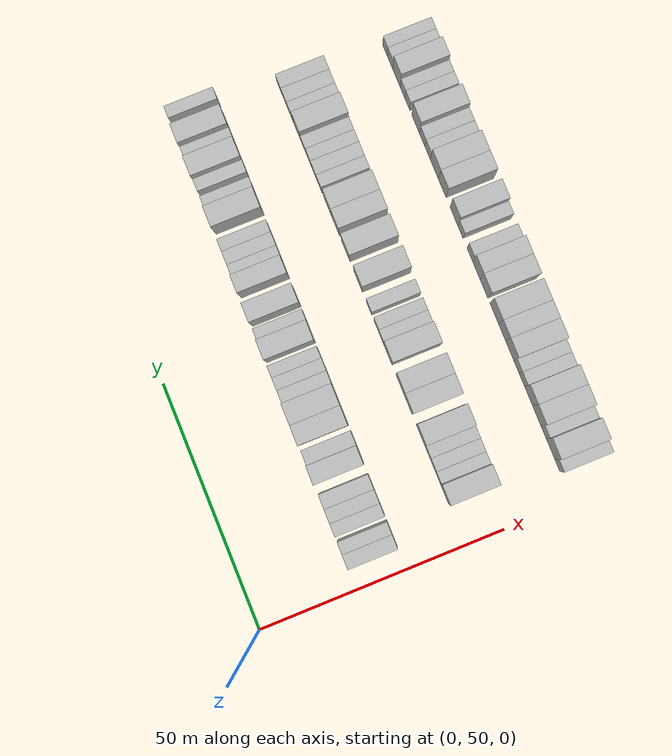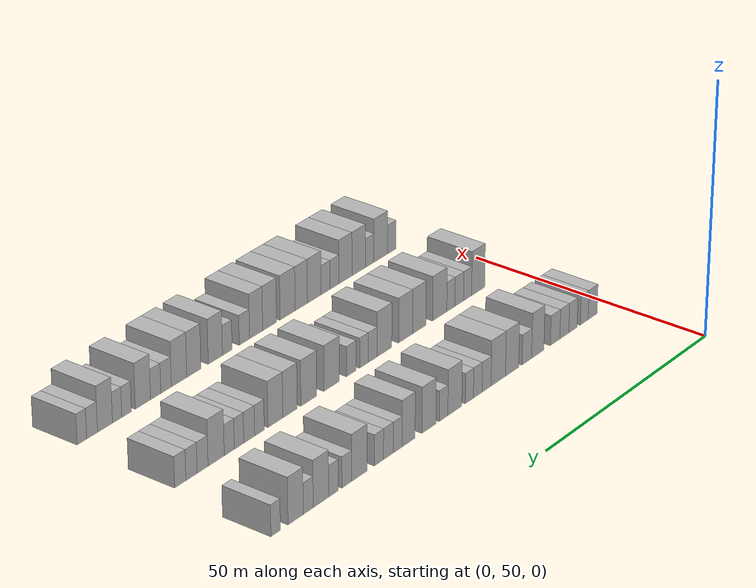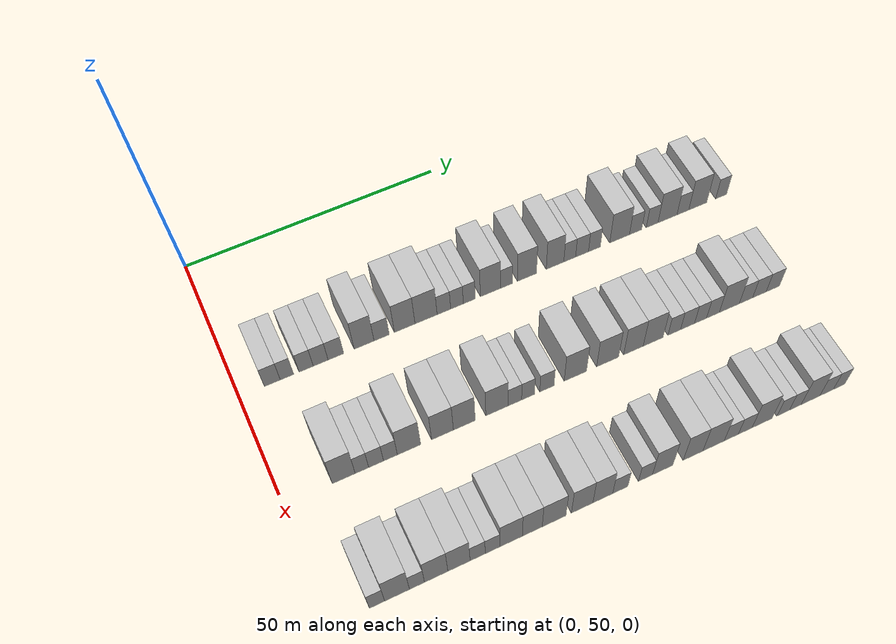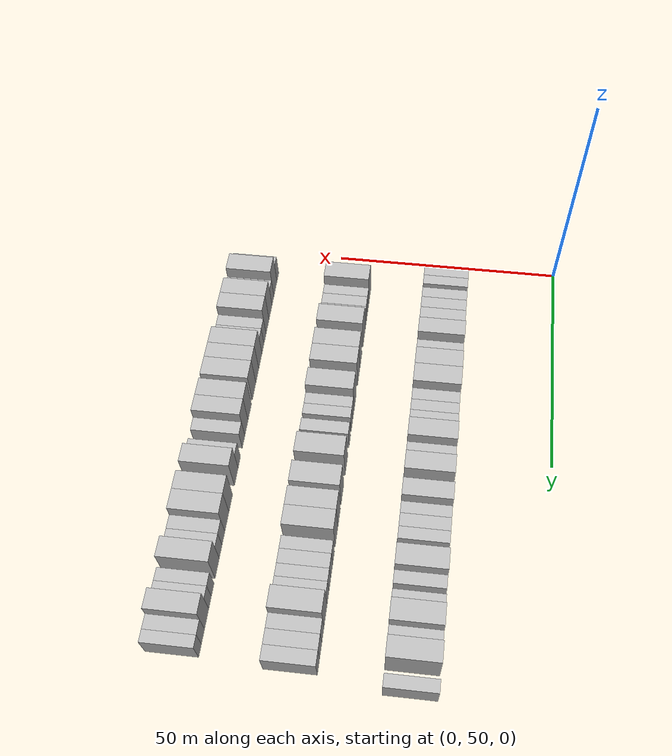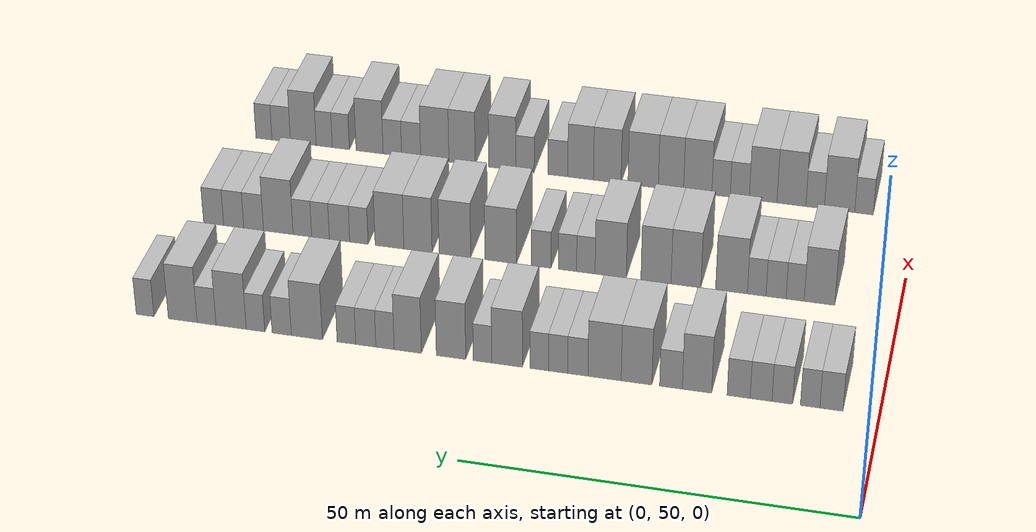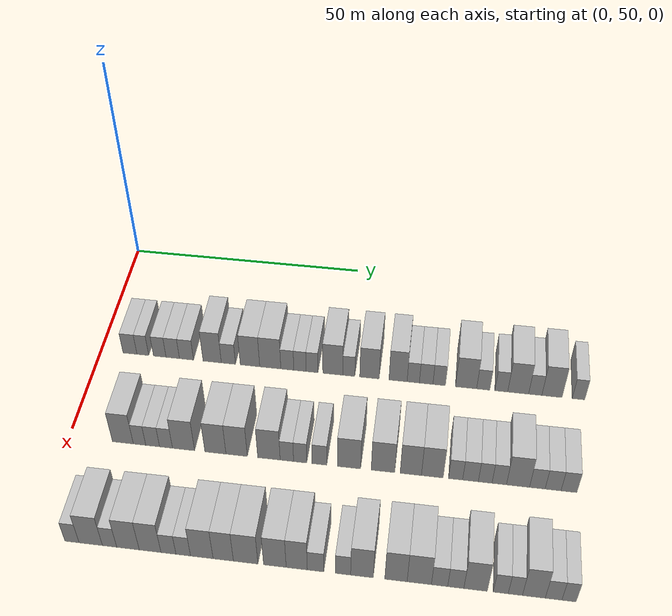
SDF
<sdf version="1.6">
 <world name="default">
  <model name="building_73">
   <static>1</static>
   <pose>25.0000 56.1360 0 0.000000 0.000000 0.000000</pose>
   <link name="link">
    <pose>0 0 3.00 0 0 0</pose>
    <collision name="collision"><geometry><box><size>10.0000 2.9486 6.0000</size></box></geometry></collision>
    <visual name="visual">
     <cast_shadows>0</cast_shadows>
     <geometry><box><size>10.0000 2.9486 6.0000</size></box></geometry>
     <material>
      <script>
       <uri>model://HANNAS_wall/materials/scripts</uri>
       <uri>model://HANNAS_wall/materials/textures</uri>
       <name>vrc/HANNAS_wall</name>
      </script>
     </material>
    </visual>
   </link>
  </model>
  <model name="building_74">
   <static>1</static>
   <pose>25.0000 58.8562 0 0.000000 0.000000 0.000000</pose>
   <link name="link">
    <pose>0 0 3.00 0 0 0</pose>
    <collision name="collision"><geometry><box><size>10.0000 2.4918 6.0000</size></box></geometry></collision>
    <visual name="visual">
     <cast_shadows>0</cast_shadows>
     <geometry><box><size>10.0000 2.4918 6.0000</size></box></geometry>
     <material>
      <script>
       <uri>model://HANNAS_wall/materials/scripts</uri>
       <uri>model://HANNAS_wall/materials/textures</uri>
       <name>vrc/HANNAS_wall</name>
      </script>
     </material>
    </visual>
   </link>
  </model>
  <model name="building_75">
   <static>1</static>
   <pose>25.0000 62.4232 0 0.000000 0.000000 0.000000</pose>
   <link name="link">
    <pose>0 0 3.00 0 0 0</pose>
    <collision name="collision"><geometry><box><size>10.0000 2.6422 6.0000</size></box></geometry></collision>
    <visual name="visual">
     <cast_shadows>0</cast_shadows>
     <geometry><box><size>10.0000 2.6422 6.0000</size></box></geometry>
     <material>
      <script>
       <uri>model://HANNAS_wall/materials/scripts</uri>
       <uri>model://HANNAS_wall/materials/textures</uri>
       <name>vrc/HANNAS_wall</name>
      </script>
     </material>
    </visual>
   </link>
  </model>
  <model name="building_76">
   <static>1</static>
   <pose>25.0000 65.1523 0 0.000000 0.000000 0.000000</pose>
   <link name="link">
    <pose>0 0 3.00 0 0 0</pose>
    <collision name="collision"><geometry><box><size>10.0000 2.8160 6.0000</size></box></geometry></collision>
    <visual name="visual">
     <cast_shadows>0</cast_shadows>
     <geometry><box><size>10.0000 2.8160 6.0000</size></box></geometry>
     <material>
      <script>
       <uri>model://HANNAS_wall/materials/scripts</uri>
       <uri>model://HANNAS_wall/materials/textures</uri>
       <name>vrc/HANNAS_wall</name>
      </script>
     </material>
    </visual>
   </link>
  </model>
  <model name="building_77">
   <static>1</static>
   <pose>25.0000 68.0411 0 0.000000 0.000000 0.000000</pose>
   <link name="link">
    <pose>0 0 3.00 0 0 0</pose>
    <collision name="collision"><geometry><box><size>10.0000 2.9617 6.0000</size></box></geometry></collision>
    <visual name="visual">
     <cast_shadows>0</cast_shadows>
     <geometry><box><size>10.0000 2.9617 6.0000</size></box></geometry>
     <material>
      <script>
       <uri>model://HANNAS_wall/materials/scripts</uri>
       <uri>model://HANNAS_wall/materials/textures</uri>
       <name>vrc/HANNAS_wall</name>
      </script>
     </material>
    </visual>
   </link>
  </model>
  <model name="building_78">
   <static>1</static>
   <pose>25.0000 73.4273 0 0.000000 0.000000 0.000000</pose>
   <link name="link">
    <pose>0 0 4.50 0 0 0</pose>
    <collision name="collision"><geometry><box><size>10.0000 3.8107 9.0000</size></box></geometry></collision>
    <visual name="visual">
     <cast_shadows>0</cast_shadows>
     <geometry><box><size>10.0000 3.8107 9.0000</size></box></geometry>
     <material>
      <script>
       <uri>model://HANNAS_wall/materials/scripts</uri>
       <uri>model://HANNAS_wall/materials/textures</uri>
       <name>vrc/HANNAS_wall</name>
      </script>
     </material>
    </visual>
   </link>
  </model>
  <model name="building_79">
   <static>1</static>
   <pose>25.0000 76.8065 0 0.000000 0.000000 0.000000</pose>
   <link name="link">
    <pose>0 0 3.00 0 0 0</pose>
    <collision name="collision"><geometry><box><size>10.0000 2.9477 6.0000</size></box></geometry></collision>
    <visual name="visual">
     <cast_shadows>0</cast_shadows>
     <geometry><box><size>10.0000 2.9477 6.0000</size></box></geometry>
     <material>
      <script>
       <uri>model://HANNAS_wall/materials/scripts</uri>
       <uri>model://HANNAS_wall/materials/textures</uri>
       <name>vrc/HANNAS_wall</name>
      </script>
     </material>
    </visual>
   </link>
  </model>
  <model name="building_80">
   <static>1</static>
   <pose>25.0000 81.2902 0 0.000000 0.000000 0.000000</pose>
   <link name="link">
    <pose>0 0 4.50 0 0 0</pose>
    <collision name="collision"><geometry><box><size>10.0000 4.0198 9.0000</size></box></geometry></collision>
    <visual name="visual">
     <cast_shadows>0</cast_shadows>
     <geometry><box><size>10.0000 4.0198 9.0000</size></box></geometry>
     <material>
      <script>
       <uri>model://HANNAS_wall/materials/scripts</uri>
       <uri>model://HANNAS_wall/materials/textures</uri>
       <name>vrc/HANNAS_wall</name>
      </script>
     </material>
    </visual>
   </link>
  </model>
  <model name="building_81">
   <static>1</static>
   <pose>25.0000 85.4808 0 0.000000 0.000000 0.000000</pose>
   <link name="link">
    <pose>0 0 4.50 0 0 0</pose>
    <collision name="collision"><geometry><box><size>10.0000 4.3614 9.0000</size></box></geometry></collision>
    <visual name="visual">
     <cast_shadows>0</cast_shadows>
     <geometry><box><size>10.0000 4.3614 9.0000</size></box></geometry>
     <material>
      <script>
       <uri>model://HANNAS_wall/materials/scripts</uri>
       <uri>model://HANNAS_wall/materials/textures</uri>
       <name>vrc/HANNAS_wall</name>
      </script>
     </material>
    </visual>
   </link>
  </model>
  <model name="building_82">
   <static>1</static>
   <pose>25.0000 89.0031 0 0.000000 0.000000 0.000000</pose>
   <link name="link">
    <pose>0 0 3.00 0 0 0</pose>
    <collision name="collision"><geometry><box><size>10.0000 2.6832 6.0000</size></box></geometry></collision>
    <visual name="visual">
     <cast_shadows>0</cast_shadows>
     <geometry><box><size>10.0000 2.6832 6.0000</size></box></geometry>
     <material>
      <script>
       <uri>model://HANNAS_wall/materials/scripts</uri>
       <uri>model://HANNAS_wall/materials/textures</uri>
       <name>vrc/HANNAS_wall</name>
      </script>
     </material>
    </visual>
   </link>
  </model>
  <model name="building_83">
   <static>1</static>
   <pose>25.0000 91.6121 0 0.000000 0.000000 0.000000</pose>
   <link name="link">
    <pose>0 0 3.00 0 0 0</pose>
    <collision name="collision"><geometry><box><size>10.0000 2.5348 6.0000</size></box></geometry></collision>
    <visual name="visual">
     <cast_shadows>0</cast_shadows>
     <geometry><box><size>10.0000 2.5348 6.0000</size></box></geometry>
     <material>
      <script>
       <uri>model://HANNAS_wall/materials/scripts</uri>
       <uri>model://HANNAS_wall/materials/textures</uri>
       <name>vrc/HANNAS_wall</name>
      </script>
     </material>
    </visual>
   </link>
  </model>
  <model name="building_84">
   <static>1</static>
   <pose>25.0000 94.0917 0 0.000000 0.000000 0.000000</pose>
   <link name="link">
    <pose>0 0 3.00 0 0 0</pose>
    <collision name="collision"><geometry><box><size>10.0000 2.4243 6.0000</size></box></geometry></collision>
    <visual name="visual">
     <cast_shadows>0</cast_shadows>
     <geometry><box><size>10.0000 2.4243 6.0000</size></box></geometry>
     <material>
      <script>
       <uri>model://HANNAS_wall/materials/scripts</uri>
       <uri>model://HANNAS_wall/materials/textures</uri>
       <name>vrc/HANNAS_wall</name>
      </script>
     </material>
    </visual>
   </link>
  </model>
  <model name="building_85">
   <static>1</static>
   <pose>25.0000 98.3396 0 0.000000 0.000000 0.000000</pose>
   <link name="link">
    <pose>0 0 4.50 0 0 0</pose>
    <collision name="collision"><geometry><box><size>10.0000 4.0715 9.0000</size></box></geometry></collision>
    <visual name="visual">
     <cast_shadows>0</cast_shadows>
     <geometry><box><size>10.0000 4.0715 9.0000</size></box></geometry>
     <material>
      <script>
       <uri>model://HANNAS_wall/materials/scripts</uri>
       <uri>model://HANNAS_wall/materials/textures</uri>
       <name>vrc/HANNAS_wall</name>
      </script>
     </material>
    </visual>
   </link>
  </model>
  <model name="building_86">
   <static>1</static>
   <pose>25.0000 101.6070 0 0.000000 0.000000 0.000000</pose>
   <link name="link">
    <pose>0 0 3.00 0 0 0</pose>
    <collision name="collision"><geometry><box><size>10.0000 2.4632 6.0000</size></box></geometry></collision>
    <visual name="visual">
     <cast_shadows>0</cast_shadows>
     <geometry><box><size>10.0000 2.4632 6.0000</size></box></geometry>
     <material>
      <script>
       <uri>model://HANNAS_wall/materials/scripts</uri>
       <uri>model://HANNAS_wall/materials/textures</uri>
       <name>vrc/HANNAS_wall</name>
      </script>
     </material>
    </visual>
   </link>
  </model>
  <model name="building_87">
   <static>1</static>
   <pose>25.0000 105.8051 0 0.000000 0.000000 0.000000</pose>
   <link name="link">
    <pose>0 0 4.50 0 0 0</pose>
    <collision name="collision"><geometry><box><size>10.0000 3.9330 9.0000</size></box></geometry></collision>
    <visual name="visual">
     <cast_shadows>0</cast_shadows>
     <geometry><box><size>10.0000 3.9330 9.0000</size></box></geometry>
     <material>
      <script>
       <uri>model://HANNAS_wall/materials/scripts</uri>
       <uri>model://HANNAS_wall/materials/textures</uri>
       <name>vrc/HANNAS_wall</name>
      </script>
     </material>
    </visual>
   </link>
  </model>
  <model name="building_88">
   <static>1</static>
   <pose>25.0000 111.6050 0 0.000000 0.000000 0.000000</pose>
   <link name="link">
    <pose>0 0 4.50 0 0 0</pose>
    <collision name="collision"><geometry><box><size>10.0000 3.6668 9.0000</size></box></geometry></collision>
    <visual name="visual">
     <cast_shadows>0</cast_shadows>
     <geometry><box><size>10.0000 3.6668 9.0000</size></box></geometry>
     <material>
      <script>
       <uri>model://HANNAS_wall/materials/scripts</uri>
       <uri>model://HANNAS_wall/materials/textures</uri>
       <name>vrc/HANNAS_wall</name>
      </script>
     </material>
    </visual>
   </link>
  </model>
  <model name="building_89">
   <static>1</static>
   <pose>25.0000 114.6731 0 0.000000 0.000000 0.000000</pose>
   <link name="link">
    <pose>0 0 3.00 0 0 0</pose>
    <collision name="collision"><geometry><box><size>10.0000 2.4694 6.0000</size></box></geometry></collision>
    <visual name="visual">
     <cast_shadows>0</cast_shadows>
     <geometry><box><size>10.0000 2.4694 6.0000</size></box></geometry>
     <material>
      <script>
       <uri>model://HANNAS_wall/materials/scripts</uri>
       <uri>model://HANNAS_wall/materials/textures</uri>
       <name>vrc/HANNAS_wall</name>
      </script>
     </material>
    </visual>
   </link>
  </model>
  <model name="building_90">
   <static>1</static>
   <pose>25.0000 117.2716 0 0.000000 0.000000 0.000000</pose>
   <link name="link">
    <pose>0 0 3.00 0 0 0</pose>
    <collision name="collision"><geometry><box><size>10.0000 2.7276 6.0000</size></box></geometry></collision>
    <visual name="visual">
     <cast_shadows>0</cast_shadows>
     <geometry><box><size>10.0000 2.7276 6.0000</size></box></geometry>
     <material>
      <script>
       <uri>model://HANNAS_wall/materials/scripts</uri>
       <uri>model://HANNAS_wall/materials/textures</uri>
       <name>vrc/HANNAS_wall</name>
      </script>
     </material>
    </visual>
   </link>
  </model>
  <model name="building_91">
   <static>1</static>
   <pose>25.0000 119.8943 0 0.000000 0.000000 0.000000</pose>
   <link name="link">
    <pose>0 0 3.00 0 0 0</pose>
    <collision name="collision"><geometry><box><size>10.0000 2.5179 6.0000</size></box></geometry></collision>
    <visual name="visual">
     <cast_shadows>0</cast_shadows>
     <geometry><box><size>10.0000 2.5179 6.0000</size></box></geometry>
     <material>
      <script>
       <uri>model://HANNAS_wall/materials/scripts</uri>
       <uri>model://HANNAS_wall/materials/textures</uri>
       <name>vrc/HANNAS_wall</name>
      </script>
     </material>
    </visual>
   </link>
  </model>
  <model name="building_92">
   <static>1</static>
   <pose>25.0000 125.2705 0 0.000000 0.000000 0.000000</pose>
   <link name="link">
    <pose>0 0 4.50 0 0 0</pose>
    <collision name="collision"><geometry><box><size>10.0000 4.2346 9.0000</size></box></geometry></collision>
    <visual name="visual">
     <cast_shadows>0</cast_shadows>
     <geometry><box><size>10.0000 4.2346 9.0000</size></box></geometry>
     <material>
      <script>
       <uri>model://HANNAS_wall/materials/scripts</uri>
       <uri>model://HANNAS_wall/materials/textures</uri>
       <name>vrc/HANNAS_wall</name>
      </script>
     </material>
    </visual>
   </link>
  </model>
  <model name="building_93">
   <static>1</static>
   <pose>25.0000 128.7063 0 0.000000 0.000000 0.000000</pose>
   <link name="link">
    <pose>0 0 3.00 0 0 0</pose>
    <collision name="collision"><geometry><box><size>10.0000 2.6369 6.0000</size></box></geometry></collision>
    <visual name="visual">
     <cast_shadows>0</cast_shadows>
     <geometry><box><size>10.0000 2.6369 6.0000</size></box></geometry>
     <material>
      <script>
       <uri>model://HANNAS_wall/materials/scripts</uri>
       <uri>model://HANNAS_wall/materials/textures</uri>
       <name>vrc/HANNAS_wall</name>
      </script>
     </material>
    </visual>
   </link>
  </model>
  <model name="building_94">
   <static>1</static>
   <pose>25.0000 132.2970 0 0.000000 0.000000 0.000000</pose>
   <link name="link">
    <pose>0 0 3.00 0 0 0</pose>
    <collision name="collision"><geometry><box><size>10.0000 2.5446 6.0000</size></box></geometry></collision>
    <visual name="visual">
     <cast_shadows>0</cast_shadows>
     <geometry><box><size>10.0000 2.5446 6.0000</size></box></geometry>
     <material>
      <script>
       <uri>model://HANNAS_wall/materials/scripts</uri>
       <uri>model://HANNAS_wall/materials/textures</uri>
       <name>vrc/HANNAS_wall</name>
      </script>
     </material>
    </visual>
   </link>
  </model>
  <model name="building_95">
   <static>1</static>
   <pose>25.0000 135.6433 0 0.000000 0.000000 0.000000</pose>
   <link name="link">
    <pose>0 0 4.50 0 0 0</pose>
    <collision name="collision"><geometry><box><size>10.0000 4.1480 9.0000</size></box></geometry></collision>
    <visual name="visual">
     <cast_shadows>0</cast_shadows>
     <geometry><box><size>10.0000 4.1480 9.0000</size></box></geometry>
     <material>
      <script>
       <uri>model://HANNAS_wall/materials/scripts</uri>
       <uri>model://HANNAS_wall/materials/textures</uri>
       <name>vrc/HANNAS_wall</name>
      </script>
     </material>
    </visual>
   </link>
  </model>
  <model name="building_96">
   <static>1</static>
   <pose>25.0000 139.0249 0 0.000000 0.000000 0.000000</pose>
   <link name="link">
    <pose>0 0 3.00 0 0 0</pose>
    <collision name="collision"><geometry><box><size>10.0000 2.6152 6.0000</size></box></geometry></collision>
    <visual name="visual">
     <cast_shadows>0</cast_shadows>
     <geometry><box><size>10.0000 2.6152 6.0000</size></box></geometry>
     <material>
      <script>
       <uri>model://HANNAS_wall/materials/scripts</uri>
       <uri>model://HANNAS_wall/materials/textures</uri>
       <name>vrc/HANNAS_wall</name>
      </script>
     </material>
    </visual>
   </link>
  </model>
  <model name="building_97">
   <static>1</static>
   <pose>25.0000 142.3239 0 0.000000 0.000000 0.000000</pose>
   <link name="link">
    <pose>0 0 4.50 0 0 0</pose>
    <collision name="collision"><geometry><box><size>10.0000 3.9828 9.0000</size></box></geometry></collision>
    <visual name="visual">
     <cast_shadows>0</cast_shadows>
     <geometry><box><size>10.0000 3.9828 9.0000</size></box></geometry>
     <material>
      <script>
       <uri>model://HANNAS_wall/materials/scripts</uri>
       <uri>model://HANNAS_wall/materials/textures</uri>
       <name>vrc/HANNAS_wall</name>
      </script>
     </material>
    </visual>
   </link>
  </model>
  <model name="building_98">
   <static>1</static>
   <pose>25.0000 147.5456 0 0.000000 0.000000 0.000000</pose>
   <link name="link">
    <pose>0 0 3.00 0 0 0</pose>
    <collision name="collision"><geometry><box><size>10.0000 2.4606 6.0000</size></box></geometry></collision>
    <visual name="visual">
     <cast_shadows>0</cast_shadows>
     <geometry><box><size>10.0000 2.4606 6.0000</size></box></geometry>
     <material>
      <script>
       <uri>model://HANNAS_wall/materials/scripts</uri>
       <uri>model://HANNAS_wall/materials/textures</uri>
       <name>vrc/HANNAS_wall</name>
      </script>
     </material>
    </visual>
   </link>
  </model>
  <model name="building_199">
   <static>1</static>
   <pose>47.0000 60.6611 0 0.000000 0.000000 0.000000</pose>
   <link name="link">
    <pose>0 0 4.50 0 0 0</pose>
    <collision name="collision"><geometry><box><size>10.0000 4.1060 9.0000</size></box></geometry></collision>
    <visual name="visual">
     <cast_shadows>0</cast_shadows>
     <geometry><box><size>10.0000 4.1060 9.0000</size></box></geometry>
     <material>
      <script>
       <uri>model://HANNAS_wall/materials/scripts</uri>
       <uri>model://HANNAS_wall/materials/textures</uri>
       <name>vrc/HANNAS_wall</name>
      </script>
     </material>
    </visual>
   </link>
  </model>
  <model name="building_200">
   <static>1</static>
   <pose>47.0000 63.9319 0 0.000000 0.000000 0.000000</pose>
   <link name="link">
    <pose>0 0 3.00 0 0 0</pose>
    <collision name="collision"><geometry><box><size>10.0000 2.4356 6.0000</size></box></geometry></collision>
    <visual name="visual">
     <cast_shadows>0</cast_shadows>
     <geometry><box><size>10.0000 2.4356 6.0000</size></box></geometry>
     <material>
      <script>
       <uri>model://HANNAS_wall/materials/scripts</uri>
       <uri>model://HANNAS_wall/materials/textures</uri>
       <name>vrc/HANNAS_wall</name>
      </script>
     </material>
    </visual>
   </link>
  </model>
  <model name="building_201">
   <static>1</static>
   <pose>47.0000 66.4999 0 0.000000 0.000000 0.000000</pose>
   <link name="link">
    <pose>0 0 3.00 0 0 0</pose>
    <collision name="collision"><geometry><box><size>10.0000 2.7004 6.0000</size></box></geometry></collision>
    <visual name="visual">
     <cast_shadows>0</cast_shadows>
     <geometry><box><size>10.0000 2.7004 6.0000</size></box></geometry>
     <material>
      <script>
       <uri>model://HANNAS_wall/materials/scripts</uri>
       <uri>model://HANNAS_wall/materials/textures</uri>
       <name>vrc/HANNAS_wall</name>
      </script>
     </material>
    </visual>
   </link>
  </model>
  <model name="building_202">
   <static>1</static>
   <pose>47.0000 69.1117 0 0.000000 0.000000 0.000000</pose>
   <link name="link">
    <pose>0 0 3.00 0 0 0</pose>
    <collision name="collision"><geometry><box><size>10.0000 2.5232 6.0000</size></box></geometry></collision>
    <visual name="visual">
     <cast_shadows>0</cast_shadows>
     <geometry><box><size>10.0000 2.5232 6.0000</size></box></geometry>
     <material>
      <script>
       <uri>model://HANNAS_wall/materials/scripts</uri>
       <uri>model://HANNAS_wall/materials/textures</uri>
       <name>vrc/HANNAS_wall</name>
      </script>
     </material>
    </visual>
   </link>
  </model>
  <model name="building_203">
   <static>1</static>
   <pose>47.0000 72.5272 0 0.000000 0.000000 0.000000</pose>
   <link name="link">
    <pose>0 0 4.50 0 0 0</pose>
    <collision name="collision"><geometry><box><size>10.0000 4.3077 9.0000</size></box></geometry></collision>
    <visual name="visual">
     <cast_shadows>0</cast_shadows>
     <geometry><box><size>10.0000 4.3077 9.0000</size></box></geometry>
     <material>
      <script>
       <uri>model://HANNAS_wall/materials/scripts</uri>
       <uri>model://HANNAS_wall/materials/textures</uri>
       <name>vrc/HANNAS_wall</name>
      </script>
     </material>
    </visual>
   </link>
  </model>
  <model name="building_204">
   <static>1</static>
   <pose>47.0000 78.7193 0 0.000000 0.000000 0.000000</pose>
   <link name="link">
    <pose>0 0 4.50 0 0 0</pose>
    <collision name="collision"><geometry><box><size>10.0000 4.0765 9.0000</size></box></geometry></collision>
    <visual name="visual">
     <cast_shadows>0</cast_shadows>
     <geometry><box><size>10.0000 4.0765 9.0000</size></box></geometry>
     <material>
      <script>
       <uri>model://HANNAS_wall/materials/scripts</uri>
       <uri>model://HANNAS_wall/materials/textures</uri>
       <name>vrc/HANNAS_wall</name>
      </script>
     </material>
    </visual>
   </link>
  </model>
  <model name="building_205">
   <static>1</static>
   <pose>47.0000 82.8177 0 0.000000 0.000000 0.000000</pose>
   <link name="link">
    <pose>0 0 4.50 0 0 0</pose>
    <collision name="collision"><geometry><box><size>10.0000 4.1204 9.0000</size></box></geometry></collision>
    <visual name="visual">
     <cast_shadows>0</cast_shadows>
     <geometry><box><size>10.0000 4.1204 9.0000</size></box></geometry>
     <material>
      <script>
       <uri>model://HANNAS_wall/materials/scripts</uri>
       <uri>model://HANNAS_wall/materials/textures</uri>
       <name>vrc/HANNAS_wall</name>
      </script>
     </material>
    </visual>
   </link>
  </model>
  <model name="building_206">
   <static>1</static>
   <pose>47.0000 89.0264 0 0.000000 0.000000 0.000000</pose>
   <link name="link">
    <pose>0 0 4.50 0 0 0</pose>
    <collision name="collision"><geometry><box><size>10.0000 4.2969 9.0000</size></box></geometry></collision>
    <visual name="visual">
     <cast_shadows>0</cast_shadows>
     <geometry><box><size>10.0000 4.2969 9.0000</size></box></geometry>
     <material>
      <script>
       <uri>model://HANNAS_wall/materials/scripts</uri>
       <uri>model://HANNAS_wall/materials/textures</uri>
       <name>vrc/HANNAS_wall</name>
      </script>
     </material>
    </visual>
   </link>
  </model>
  <model name="building_207">
   <static>1</static>
   <pose>47.0000 92.4583 0 0.000000 0.000000 0.000000</pose>
   <link name="link">
    <pose>0 0 3.00 0 0 0</pose>
    <collision name="collision"><geometry><box><size>10.0000 2.5668 6.0000</size></box></geometry></collision>
    <visual name="visual">
     <cast_shadows>0</cast_shadows>
     <geometry><box><size>10.0000 2.5668 6.0000</size></box></geometry>
     <material>
      <script>
       <uri>model://HANNAS_wall/materials/scripts</uri>
       <uri>model://HANNAS_wall/materials/textures</uri>
       <name>vrc/HANNAS_wall</name>
      </script>
     </material>
    </visual>
   </link>
  </model>
  <model name="building_208">
   <static>1</static>
   <pose>47.0000 94.9987 0 0.000000 0.000000 0.000000</pose>
   <link name="link">
    <pose>0 0 3.00 0 0 0</pose>
    <collision name="collision"><geometry><box><size>10.0000 2.5139 6.0000</size></box></geometry></collision>
    <visual name="visual">
     <cast_shadows>0</cast_shadows>
     <geometry><box><size>10.0000 2.5139 6.0000</size></box></geometry>
     <material>
      <script>
       <uri>model://HANNAS_wall/materials/scripts</uri>
       <uri>model://HANNAS_wall/materials/textures</uri>
       <name>vrc/HANNAS_wall</name>
      </script>
     </material>
    </visual>
   </link>
  </model>
  <model name="building_209">
   <static>1</static>
   <pose>47.0000 98.6553 0 0.000000 0.000000 0.000000</pose>
   <link name="link">
    <pose>0 0 3.00 0 0 0</pose>
    <collision name="collision"><geometry><box><size>10.0000 2.7993 6.0000</size></box></geometry></collision>
    <visual name="visual">
     <cast_shadows>0</cast_shadows>
     <geometry><box><size>10.0000 2.7993 6.0000</size></box></geometry>
     <material>
      <script>
       <uri>model://HANNAS_wall/materials/scripts</uri>
       <uri>model://HANNAS_wall/materials/textures</uri>
       <name>vrc/HANNAS_wall</name>
      </script>
     </material>
    </visual>
   </link>
  </model>
  <model name="building_210">
   <static>1</static>
   <pose>47.0000 104.2615 0 0.000000 0.000000 0.000000</pose>
   <link name="link">
    <pose>0 0 4.50 0 0 0</pose>
    <collision name="collision"><geometry><box><size>10.0000 4.4131 9.0000</size></box></geometry></collision>
    <visual name="visual">
     <cast_shadows>0</cast_shadows>
     <geometry><box><size>10.0000 4.4131 9.0000</size></box></geometry>
     <material>
      <script>
       <uri>model://HANNAS_wall/materials/scripts</uri>
       <uri>model://HANNAS_wall/materials/textures</uri>
       <name>vrc/HANNAS_wall</name>
      </script>
     </material>
    </visual>
   </link>
  </model>
  <model name="building_211">
   <static>1</static>
   <pose>47.0000 110.6811 0 0.000000 0.000000 0.000000</pose>
   <link name="link">
    <pose>0 0 4.50 0 0 0</pose>
    <collision name="collision"><geometry><box><size>10.0000 4.4261 9.0000</size></box></geometry></collision>
    <visual name="visual">
     <cast_shadows>0</cast_shadows>
     <geometry><box><size>10.0000 4.4261 9.0000</size></box></geometry>
     <material>
      <script>
       <uri>model://HANNAS_wall/materials/scripts</uri>
       <uri>model://HANNAS_wall/materials/textures</uri>
       <name>vrc/HANNAS_wall</name>
      </script>
     </material>
    </visual>
   </link>
  </model>
  <model name="building_212">
   <static>1</static>
   <pose>47.0000 115.8822 0 0.000000 0.000000 0.000000</pose>
   <link name="link">
    <pose>0 0 4.50 0 0 0</pose>
    <collision name="collision"><geometry><box><size>10.0000 3.9761 9.0000</size></box></geometry></collision>
    <visual name="visual">
     <cast_shadows>0</cast_shadows>
     <geometry><box><size>10.0000 3.9761 9.0000</size></box></geometry>
     <material>
      <script>
       <uri>model://HANNAS_wall/materials/scripts</uri>
       <uri>model://HANNAS_wall/materials/textures</uri>
       <name>vrc/HANNAS_wall</name>
      </script>
     </material>
    </visual>
   </link>
  </model>
  <model name="building_213">
   <static>1</static>
   <pose>47.0000 119.9056 0 0.000000 0.000000 0.000000</pose>
   <link name="link">
    <pose>0 0 4.50 0 0 0</pose>
    <collision name="collision"><geometry><box><size>10.0000 4.0707 9.0000</size></box></geometry></collision>
    <visual name="visual">
     <cast_shadows>0</cast_shadows>
     <geometry><box><size>10.0000 4.0707 9.0000</size></box></geometry>
     <material>
      <script>
       <uri>model://HANNAS_wall/materials/scripts</uri>
       <uri>model://HANNAS_wall/materials/textures</uri>
       <name>vrc/HANNAS_wall</name>
      </script>
     </material>
    </visual>
   </link>
  </model>
  <model name="building_214">
   <static>1</static>
   <pose>47.0000 124.2435 0 0.000000 0.000000 0.000000</pose>
   <link name="link">
    <pose>0 0 3.00 0 0 0</pose>
    <collision name="collision"><geometry><box><size>10.0000 2.6051 6.0000</size></box></geometry></collision>
    <visual name="visual">
     <cast_shadows>0</cast_shadows>
     <geometry><box><size>10.0000 2.6051 6.0000</size></box></geometry>
     <material>
      <script>
       <uri>model://HANNAS_wall/materials/scripts</uri>
       <uri>model://HANNAS_wall/materials/textures</uri>
       <name>vrc/HANNAS_wall</name>
      </script>
     </material>
    </visual>
   </link>
  </model>
  <model name="building_215">
   <static>1</static>
   <pose>47.0000 126.9993 0 0.000000 0.000000 0.000000</pose>
   <link name="link">
    <pose>0 0 3.00 0 0 0</pose>
    <collision name="collision"><geometry><box><size>10.0000 2.9065 6.0000</size></box></geometry></collision>
    <visual name="visual">
     <cast_shadows>0</cast_shadows>
     <geometry><box><size>10.0000 2.9065 6.0000</size></box></geometry>
     <material>
      <script>
       <uri>model://HANNAS_wall/materials/scripts</uri>
       <uri>model://HANNAS_wall/materials/textures</uri>
       <name>vrc/HANNAS_wall</name>
      </script>
     </material>
    </visual>
   </link>
  </model>
  <model name="building_216">
   <static>1</static>
   <pose>47.0000 129.7147 0 0.000000 0.000000 0.000000</pose>
   <link name="link">
    <pose>0 0 3.00 0 0 0</pose>
    <collision name="collision"><geometry><box><size>10.0000 2.5242 6.0000</size></box></geometry></collision>
    <visual name="visual">
     <cast_shadows>0</cast_shadows>
     <geometry><box><size>10.0000 2.5242 6.0000</size></box></geometry>
     <material>
      <script>
       <uri>model://HANNAS_wall/materials/scripts</uri>
       <uri>model://HANNAS_wall/materials/textures</uri>
       <name>vrc/HANNAS_wall</name>
      </script>
     </material>
    </visual>
   </link>
  </model>
  <model name="building_217">
   <static>1</static>
   <pose>47.0000 132.3115 0 0.000000 0.000000 0.000000</pose>
   <link name="link">
    <pose>0 0 3.00 0 0 0</pose>
    <collision name="collision"><geometry><box><size>10.0000 2.6695 6.0000</size></box></geometry></collision>
    <visual name="visual">
     <cast_shadows>0</cast_shadows>
     <geometry><box><size>10.0000 2.6695 6.0000</size></box></geometry>
     <material>
      <script>
       <uri>model://HANNAS_wall/materials/scripts</uri>
       <uri>model://HANNAS_wall/materials/textures</uri>
       <name>vrc/HANNAS_wall</name>
      </script>
     </material>
    </visual>
   </link>
  </model>
  <model name="building_218">
   <static>1</static>
   <pose>47.0000 135.7711 0 0.000000 0.000000 0.000000</pose>
   <link name="link">
    <pose>0 0 4.50 0 0 0</pose>
    <collision name="collision"><geometry><box><size>10.0000 4.2497 9.0000</size></box></geometry></collision>
    <visual name="visual">
     <cast_shadows>0</cast_shadows>
     <geometry><box><size>10.0000 4.2497 9.0000</size></box></geometry>
     <material>
      <script>
       <uri>model://HANNAS_wall/materials/scripts</uri>
       <uri>model://HANNAS_wall/materials/textures</uri>
       <name>vrc/HANNAS_wall</name>
      </script>
     </material>
    </visual>
   </link>
  </model>
  <model name="building_219">
   <static>1</static>
   <pose>47.0000 139.3181 0 0.000000 0.000000 0.000000</pose>
   <link name="link">
    <pose>0 0 3.00 0 0 0</pose>
    <collision name="collision"><geometry><box><size>10.0000 2.8443 6.0000</size></box></geometry></collision>
    <visual name="visual">
     <cast_shadows>0</cast_shadows>
     <geometry><box><size>10.0000 2.8443 6.0000</size></box></geometry>
     <material>
      <script>
       <uri>model://HANNAS_wall/materials/scripts</uri>
       <uri>model://HANNAS_wall/materials/textures</uri>
       <name>vrc/HANNAS_wall</name>
      </script>
     </material>
    </visual>
   </link>
  </model>
  <model name="building_220">
   <static>1</static>
   <pose>47.0000 142.1942 0 0.000000 0.000000 0.000000</pose>
   <link name="link">
    <pose>0 0 3.00 0 0 0</pose>
    <collision name="collision"><geometry><box><size>10.0000 2.9078 6.0000</size></box></geometry></collision>
    <visual name="visual">
     <cast_shadows>0</cast_shadows>
     <geometry><box><size>10.0000 2.9078 6.0000</size></box></geometry>
     <material>
      <script>
       <uri>model://HANNAS_wall/materials/scripts</uri>
       <uri>model://HANNAS_wall/materials/textures</uri>
       <name>vrc/HANNAS_wall</name>
      </script>
     </material>
    </visual>
   </link>
  </model>
  <model name="building_221">
   <static>1</static>
   <pose>47.0000 145.0980 0 0.000000 0.000000 0.000000</pose>
   <link name="link">
    <pose>0 0 3.00 0 0 0</pose>
    <collision name="collision"><geometry><box><size>10.0000 2.8998 6.0000</size></box></geometry></collision>
    <visual name="visual">
     <cast_shadows>0</cast_shadows>
     <geometry><box><size>10.0000 2.8998 6.0000</size></box></geometry>
     <material>
      <script>
       <uri>model://HANNAS_wall/materials/scripts</uri>
       <uri>model://HANNAS_wall/materials/textures</uri>
       <name>vrc/HANNAS_wall</name>
      </script>
     </material>
    </visual>
   </link>
  </model>
  <model name="building_320">
   <static>1</static>
   <pose>69.0000 57.4166 0 0.000000 0.000000 0.000000</pose>
   <link name="link">
    <pose>0 0 3.00 0 0 0</pose>
    <collision name="collision"><geometry><box><size>10.0000 2.5935 6.0000</size></box></geometry></collision>
    <visual name="visual">
     <cast_shadows>0</cast_shadows>
     <geometry><box><size>10.0000 2.5935 6.0000</size></box></geometry>
     <material>
      <script>
       <uri>model://HANNAS_wall/materials/scripts</uri>
       <uri>model://HANNAS_wall/materials/textures</uri>
       <name>vrc/HANNAS_wall</name>
      </script>
     </material>
    </visual>
   </link>
  </model>
  <model name="building_321">
   <static>1</static>
   <pose>69.0000 60.8423 0 0.000000 0.000000 0.000000</pose>
   <link name="link">
    <pose>0 0 4.50 0 0 0</pose>
    <collision name="collision"><geometry><box><size>10.0000 4.2579 9.0000</size></box></geometry></collision>
    <visual name="visual">
     <cast_shadows>0</cast_shadows>
     <geometry><box><size>10.0000 4.2579 9.0000</size></box></geometry>
     <material>
      <script>
       <uri>model://HANNAS_wall/materials/scripts</uri>
       <uri>model://HANNAS_wall/materials/textures</uri>
       <name>vrc/HANNAS_wall</name>
      </script>
     </material>
    </visual>
   </link>
  </model>
  <model name="building_322">
   <static>1</static>
   <pose>69.0000 64.2739 0 0.000000 0.000000 0.000000</pose>
   <link name="link">
    <pose>0 0 3.00 0 0 0</pose>
    <collision name="collision"><geometry><box><size>10.0000 2.6054 6.0000</size></box></geometry></collision>
    <visual name="visual">
     <cast_shadows>0</cast_shadows>
     <geometry><box><size>10.0000 2.6054 6.0000</size></box></geometry>
     <material>
      <script>
       <uri>model://HANNAS_wall/materials/scripts</uri>
       <uri>model://HANNAS_wall/materials/textures</uri>
       <name>vrc/HANNAS_wall</name>
      </script>
     </material>
    </visual>
   </link>
  </model>
  <model name="building_323">
   <static>1</static>
   <pose>69.0000 67.6148 0 0.000000 0.000000 0.000000</pose>
   <link name="link">
    <pose>0 0 4.50 0 0 0</pose>
    <collision name="collision"><geometry><box><size>10.0000 4.0764 9.0000</size></box></geometry></collision>
    <visual name="visual">
     <cast_shadows>0</cast_shadows>
     <geometry><box><size>10.0000 4.0764 9.0000</size></box></geometry>
     <material>
      <script>
       <uri>model://HANNAS_wall/materials/scripts</uri>
       <uri>model://HANNAS_wall/materials/textures</uri>
       <name>vrc/HANNAS_wall</name>
      </script>
     </material>
    </visual>
   </link>
  </model>
  <model name="building_324">
   <static>1</static>
   <pose>69.0000 71.6132 0 0.000000 0.000000 0.000000</pose>
   <link name="link">
    <pose>0 0 4.50 0 0 0</pose>
    <collision name="collision"><geometry><box><size>10.0000 3.9205 9.0000</size></box></geometry></collision>
    <visual name="visual">
     <cast_shadows>0</cast_shadows>
     <geometry><box><size>10.0000 3.9205 9.0000</size></box></geometry>
     <material>
      <script>
       <uri>model://HANNAS_wall/materials/scripts</uri>
       <uri>model://HANNAS_wall/materials/textures</uri>
       <name>vrc/HANNAS_wall</name>
      </script>
     </material>
    </visual>
   </link>
  </model>
  <model name="building_325">
   <static>1</static>
   <pose>69.0000 74.9228 0 0.000000 0.000000 0.000000</pose>
   <link name="link">
    <pose>0 0 3.00 0 0 0</pose>
    <collision name="collision"><geometry><box><size>10.0000 2.6987 6.0000</size></box></geometry></collision>
    <visual name="visual">
     <cast_shadows>0</cast_shadows>
     <geometry><box><size>10.0000 2.6987 6.0000</size></box></geometry>
     <material>
      <script>
       <uri>model://HANNAS_wall/materials/scripts</uri>
       <uri>model://HANNAS_wall/materials/textures</uri>
       <name>vrc/HANNAS_wall</name>
      </script>
     </material>
    </visual>
   </link>
  </model>
  <model name="building_326">
   <static>1</static>
   <pose>69.0000 77.5800 0 0.000000 0.000000 0.000000</pose>
   <link name="link">
    <pose>0 0 3.00 0 0 0</pose>
    <collision name="collision"><geometry><box><size>10.0000 2.6157 6.0000</size></box></geometry></collision>
    <visual name="visual">
     <cast_shadows>0</cast_shadows>
     <geometry><box><size>10.0000 2.6157 6.0000</size></box></geometry>
     <material>
      <script>
       <uri>model://HANNAS_wall/materials/scripts</uri>
       <uri>model://HANNAS_wall/materials/textures</uri>
       <name>vrc/HANNAS_wall</name>
      </script>
     </material>
    </visual>
   </link>
  </model>
  <model name="building_327">
   <static>1</static>
   <pose>69.0000 80.9052 0 0.000000 0.000000 0.000000</pose>
   <link name="link">
    <pose>0 0 4.50 0 0 0</pose>
    <collision name="collision"><geometry><box><size>10.0000 4.0348 9.0000</size></box></geometry></collision>
    <visual name="visual">
     <cast_shadows>0</cast_shadows>
     <geometry><box><size>10.0000 4.0348 9.0000</size></box></geometry>
     <material>
      <script>
       <uri>model://HANNAS_wall/materials/scripts</uri>
       <uri>model://HANNAS_wall/materials/textures</uri>
       <name>vrc/HANNAS_wall</name>
      </script>
     </material>
    </visual>
   </link>
  </model>
  <model name="building_328">
   <static>1</static>
   <pose>69.0000 84.7295 0 0.000000 0.000000 0.000000</pose>
   <link name="link">
    <pose>0 0 4.50 0 0 0</pose>
    <collision name="collision"><geometry><box><size>10.0000 3.6138 9.0000</size></box></geometry></collision>
    <visual name="visual">
     <cast_shadows>0</cast_shadows>
     <geometry><box><size>10.0000 3.6138 9.0000</size></box></geometry>
     <material>
      <script>
       <uri>model://HANNAS_wall/materials/scripts</uri>
       <uri>model://HANNAS_wall/materials/textures</uri>
       <name>vrc/HANNAS_wall</name>
      </script>
     </material>
    </visual>
   </link>
  </model>
  <model name="building_329">
   <static>1</static>
   <pose>69.0000 88.7148 0 0.000000 0.000000 0.000000</pose>
   <link name="link">
    <pose>0 0 4.50 0 0 0</pose>
    <collision name="collision"><geometry><box><size>10.0000 4.3567 9.0000</size></box></geometry></collision>
    <visual name="visual">
     <cast_shadows>0</cast_shadows>
     <geometry><box><size>10.0000 4.3567 9.0000</size></box></geometry>
     <material>
      <script>
       <uri>model://HANNAS_wall/materials/scripts</uri>
       <uri>model://HANNAS_wall/materials/textures</uri>
       <name>vrc/HANNAS_wall</name>
      </script>
     </material>
    </visual>
   </link>
  </model>
  <model name="building_330">
   <static>1</static>
   <pose>69.0000 93.8836 0 0.000000 0.000000 0.000000</pose>
   <link name="link">
    <pose>0 0 4.50 0 0 0</pose>
    <collision name="collision"><geometry><box><size>10.0000 3.9809 9.0000</size></box></geometry></collision>
    <visual name="visual">
     <cast_shadows>0</cast_shadows>
     <geometry><box><size>10.0000 3.9809 9.0000</size></box></geometry>
     <material>
      <script>
       <uri>model://HANNAS_wall/materials/scripts</uri>
       <uri>model://HANNAS_wall/materials/textures</uri>
       <name>vrc/HANNAS_wall</name>
      </script>
     </material>
    </visual>
   </link>
  </model>
  <model name="building_331">
   <static>1</static>
   <pose>69.0000 97.7336 0 0.000000 0.000000 0.000000</pose>
   <link name="link">
    <pose>0 0 4.50 0 0 0</pose>
    <collision name="collision"><geometry><box><size>10.0000 3.7190 9.0000</size></box></geometry></collision>
    <visual name="visual">
     <cast_shadows>0</cast_shadows>
     <geometry><box><size>10.0000 3.7190 9.0000</size></box></geometry>
     <material>
      <script>
       <uri>model://HANNAS_wall/materials/scripts</uri>
       <uri>model://HANNAS_wall/materials/textures</uri>
       <name>vrc/HANNAS_wall</name>
      </script>
     </material>
    </visual>
   </link>
  </model>
  <model name="building_332">
   <static>1</static>
   <pose>69.0000 101.0429 0 0.000000 0.000000 0.000000</pose>
   <link name="link">
    <pose>0 0 3.00 0 0 0</pose>
    <collision name="collision"><geometry><box><size>10.0000 2.8997 6.0000</size></box></geometry></collision>
    <visual name="visual">
     <cast_shadows>0</cast_shadows>
     <geometry><box><size>10.0000 2.8997 6.0000</size></box></geometry>
     <material>
      <script>
       <uri>model://HANNAS_wall/materials/scripts</uri>
       <uri>model://HANNAS_wall/materials/textures</uri>
       <name>vrc/HANNAS_wall</name>
      </script>
     </material>
    </visual>
   </link>
  </model>
  <model name="building_333">
   <static>1</static>
   <pose>69.0000 105.8313 0 0.000000 0.000000 0.000000</pose>
   <link name="link">
    <pose>0 0 3.00 0 0 0</pose>
    <collision name="collision"><geometry><box><size>10.0000 2.6771 6.0000</size></box></geometry></collision>
    <visual name="visual">
     <cast_shadows>0</cast_shadows>
     <geometry><box><size>10.0000 2.6771 6.0000</size></box></geometry>
     <material>
      <script>
       <uri>model://HANNAS_wall/materials/scripts</uri>
       <uri>model://HANNAS_wall/materials/textures</uri>
       <name>vrc/HANNAS_wall</name>
      </script>
     </material>
    </visual>
   </link>
  </model>
  <model name="building_334">
   <static>1</static>
   <pose>69.0000 109.1391 0 0.000000 0.000000 0.000000</pose>
   <link name="link">
    <pose>0 0 4.50 0 0 0</pose>
    <collision name="collision"><geometry><box><size>10.0000 3.9384 9.0000</size></box></geometry></collision>
    <visual name="visual">
     <cast_shadows>0</cast_shadows>
     <geometry><box><size>10.0000 3.9384 9.0000</size></box></geometry>
     <material>
      <script>
       <uri>model://HANNAS_wall/materials/scripts</uri>
       <uri>model://HANNAS_wall/materials/textures</uri>
       <name>vrc/HANNAS_wall</name>
      </script>
     </material>
    </visual>
   </link>
  </model>
  <model name="building_335">
   <static>1</static>
   <pose>69.0000 115.0351 0 0.000000 0.000000 0.000000</pose>
   <link name="link">
    <pose>0 0 4.50 0 0 0</pose>
    <collision name="collision"><geometry><box><size>10.0000 3.8535 9.0000</size></box></geometry></collision>
    <visual name="visual">
     <cast_shadows>0</cast_shadows>
     <geometry><box><size>10.0000 3.8535 9.0000</size></box></geometry>
     <material>
      <script>
       <uri>model://HANNAS_wall/materials/scripts</uri>
       <uri>model://HANNAS_wall/materials/textures</uri>
       <name>vrc/HANNAS_wall</name>
      </script>
     </material>
    </visual>
   </link>
  </model>
  <model name="building_336">
   <static>1</static>
   <pose>69.0000 119.0516 0 0.000000 0.000000 0.000000</pose>
   <link name="link">
    <pose>0 0 4.50 0 0 0</pose>
    <collision name="collision"><geometry><box><size>10.0000 4.1796 9.0000</size></box></geometry></collision>
    <visual name="visual">
     <cast_shadows>0</cast_shadows>
     <geometry><box><size>10.0000 4.1796 9.0000</size></box></geometry>
     <material>
      <script>
       <uri>model://HANNAS_wall/materials/scripts</uri>
       <uri>model://HANNAS_wall/materials/textures</uri>
       <name>vrc/HANNAS_wall</name>
      </script>
     </material>
    </visual>
   </link>
  </model>
  <model name="building_337">
   <static>1</static>
   <pose>69.0000 122.5461 0 0.000000 0.000000 0.000000</pose>
   <link name="link">
    <pose>0 0 3.00 0 0 0</pose>
    <collision name="collision"><geometry><box><size>10.0000 2.8094 6.0000</size></box></geometry></collision>
    <visual name="visual">
     <cast_shadows>0</cast_shadows>
     <geometry><box><size>10.0000 2.8094 6.0000</size></box></geometry>
     <material>
      <script>
       <uri>model://HANNAS_wall/materials/scripts</uri>
       <uri>model://HANNAS_wall/materials/textures</uri>
       <name>vrc/HANNAS_wall</name>
      </script>
     </material>
    </visual>
   </link>
  </model>
  <model name="building_338">
   <static>1</static>
   <pose>69.0000 125.3253 0 0.000000 0.000000 0.000000</pose>
   <link name="link">
    <pose>0 0 3.00 0 0 0</pose>
    <collision name="collision"><geometry><box><size>10.0000 2.7490 6.0000</size></box></geometry></collision>
    <visual name="visual">
     <cast_shadows>0</cast_shadows>
     <geometry><box><size>10.0000 2.7490 6.0000</size></box></geometry>
     <material>
      <script>
       <uri>model://HANNAS_wall/materials/scripts</uri>
       <uri>model://HANNAS_wall/materials/textures</uri>
       <name>vrc/HANNAS_wall</name>
      </script>
     </material>
    </visual>
   </link>
  </model>
  <model name="building_339">
   <static>1</static>
   <pose>69.0000 128.7112 0 0.000000 0.000000 0.000000</pose>
   <link name="link">
    <pose>0 0 4.50 0 0 0</pose>
    <collision name="collision"><geometry><box><size>10.0000 4.0227 9.0000</size></box></geometry></collision>
    <visual name="visual">
     <cast_shadows>0</cast_shadows>
     <geometry><box><size>10.0000 4.0227 9.0000</size></box></geometry>
     <material>
      <script>
       <uri>model://HANNAS_wall/materials/scripts</uri>
       <uri>model://HANNAS_wall/materials/textures</uri>
       <name>vrc/HANNAS_wall</name>
      </script>
     </material>
    </visual>
   </link>
  </model>
  <model name="building_340">
   <static>1</static>
   <pose>69.0000 132.9929 0 0.000000 0.000000 0.000000</pose>
   <link name="link">
    <pose>0 0 3.00 0 0 0</pose>
    <collision name="collision"><geometry><box><size>10.0000 2.5407 6.0000</size></box></geometry></collision>
    <visual name="visual">
     <cast_shadows>0</cast_shadows>
     <geometry><box><size>10.0000 2.5407 6.0000</size></box></geometry>
     <material>
      <script>
       <uri>model://HANNAS_wall/materials/scripts</uri>
       <uri>model://HANNAS_wall/materials/textures</uri>
       <name>vrc/HANNAS_wall</name>
      </script>
     </material>
    </visual>
   </link>
  </model>
  <model name="building_341">
   <static>1</static>
   <pose>69.0000 135.4689 0 0.000000 0.000000 0.000000</pose>
   <link name="link">
    <pose>0 0 3.00 0 0 0</pose>
    <collision name="collision"><geometry><box><size>10.0000 2.4114 6.0000</size></box></geometry></collision>
    <visual name="visual">
     <cast_shadows>0</cast_shadows>
     <geometry><box><size>10.0000 2.4114 6.0000</size></box></geometry>
     <material>
      <script>
       <uri>model://HANNAS_wall/materials/scripts</uri>
       <uri>model://HANNAS_wall/materials/textures</uri>
       <name>vrc/HANNAS_wall</name>
      </script>
     </material>
    </visual>
   </link>
  </model>
  <model name="building_342">
   <static>1</static>
   <pose>69.0000 138.6022 0 0.000000 0.000000 0.000000</pose>
   <link name="link">
    <pose>0 0 4.50 0 0 0</pose>
    <collision name="collision"><geometry><box><size>10.0000 3.8551 9.0000</size></box></geometry></collision>
    <visual name="visual">
     <cast_shadows>0</cast_shadows>
     <geometry><box><size>10.0000 3.8551 9.0000</size></box></geometry>
     <material>
      <script>
       <uri>model://HANNAS_wall/materials/scripts</uri>
       <uri>model://HANNAS_wall/materials/textures</uri>
       <name>vrc/HANNAS_wall</name>
      </script>
     </material>
    </visual>
   </link>
  </model>
  <model name="building_343">
   <static>1</static>
   <pose>69.0000 141.9265 0 0.000000 0.000000 0.000000</pose>
   <link name="link">
    <pose>0 0 3.00 0 0 0</pose>
    <collision name="collision"><geometry><box><size>10.0000 2.7936 6.0000</size></box></geometry></collision>
    <visual name="visual">
     <cast_shadows>0</cast_shadows>
     <geometry><box><size>10.0000 2.7936 6.0000</size></box></geometry>
     <material>
      <script>
       <uri>model://HANNAS_wall/materials/scripts</uri>
       <uri>model://HANNAS_wall/materials/textures</uri>
       <name>vrc/HANNAS_wall</name>
      </script>
     </material>
    </visual>
   </link>
  </model>
  <model name="building_344">
   <static>1</static>
   <pose>69.0000 144.5270 0 0.000000 0.000000 0.000000</pose>
   <link name="link">
    <pose>0 0 3.00 0 0 0</pose>
    <collision name="collision"><geometry><box><size>10.0000 2.4074 6.0000</size></box></geometry></collision>
    <visual name="visual">
     <cast_shadows>0</cast_shadows>
     <geometry><box><size>10.0000 2.4074 6.0000</size></box></geometry>
     <material>
      <script>
       <uri>model://HANNAS_wall/materials/scripts</uri>
       <uri>model://HANNAS_wall/materials/textures</uri>
       <name>vrc/HANNAS_wall</name>
      </script>
     </material>
    </visual>
   </link>
  </model>
 </world>
</sdf>
